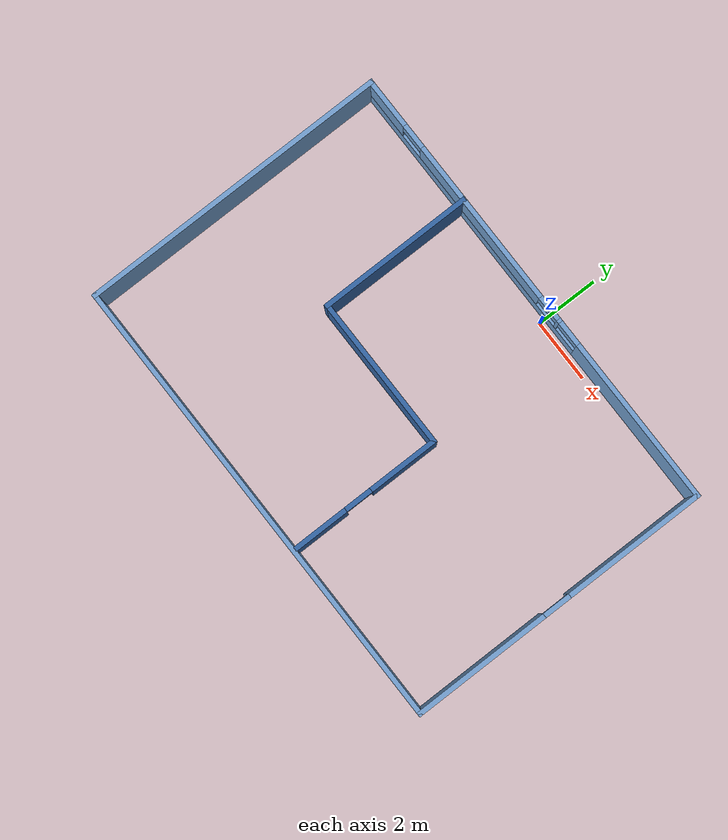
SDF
<?xml version='1.0'?>
<sdf version='1.6'>
  <model name='world'>
    <pose frame=''>-0.795235 -4.68868 0 0 -0 0</pose>
    <link name='Wall_0'>
      <collision name='Wall_0_Collision'>
        <geometry>
          <box>
            <size>10 0.15 2.5</size>
          </box>
        </geometry>
        <pose frame=''>0 0 1.25 0 -0 0</pose>
      </collision>
      <visual name='Wall_0_Visual'>
        <pose frame=''>0 0 1.25 0 -0 0</pose>
        <geometry>
          <box>
            <size>10 0.15 2.5</size>
          </box>
        </geometry>
        <material>
          <script>
            <uri>file://media/materials/scripts/gazebo.material</uri>
            <name>Gazebo/Grey</name>
          </script>
          <ambient>0.447059 0.623529 0.811765 1</ambient>
        </material>
        <meta>
          <layer>0</layer>
        </meta>
      </visual>
      <pose frame=''>-7.425 0 0 0 -0 -1.5708</pose>
    </link>
    <link name='Wall_1'>
      <collision name='Wall_1_Collision'>
        <geometry>
          <box>
            <size>15 0.15 2.5</size>
          </box>
        </geometry>
        <pose frame=''>0 0 1.25 0 -0 0</pose>
      </collision>
      <visual name='Wall_1_Visual'>
        <pose frame=''>0 0 1.25 0 -0 0</pose>
        <geometry>
          <box>
            <size>15 0.15 2.5</size>
          </box>
        </geometry>
        <material>
          <script>
            <uri>file://media/materials/scripts/gazebo.material</uri>
            <name>Gazebo/Grey</name>
          </script>
          <ambient>0.447059 0.623529 0.811765 1</ambient>
        </material>
        <meta>
          <layer>0</layer>
        </meta>
      </visual>
      <pose frame=''>0 -4.925 0 0 -0 0</pose>
    </link>
    <link name='Wall_2'>
      <pose frame=''>7.425 0 0 0 -0 1.5708</pose>
      <visual name='Wall_2_Visual_0'>
        <pose frame=''>-2.76095 0 1.25 0 -0 0</pose>
        <geometry>
          <box>
            <size>4.47811 0.15 2.5</size>
          </box>
        </geometry>
        <material>
          <script>
            <uri>file://media/materials/scripts/gazebo.material</uri>
            <name>Gazebo/Grey</name>
          </script>
          <ambient>0.447059 0.623529 0.811765 1</ambient>
        </material>
        <meta>
          <layer>0</layer>
        </meta>
      </visual>
      <collision name='Wall_2_Collision_0'>
        <geometry>
          <box>
            <size>4.47811 0.15 2.5</size>
          </box>
        </geometry>
        <pose frame=''>-2.76095 0 1.25 0 -0 0</pose>
      </collision>
      <visual name='Wall_2_Visual_1'>
        <pose frame=''>2.68905 0 1.25 0 -0 0</pose>
        <geometry>
          <box>
            <size>4.6219 0.15 2.5</size>
          </box>
        </geometry>
        <material>
          <script>
            <uri>file://media/materials/scripts/gazebo.material</uri>
            <name>Gazebo/Grey</name>
          </script>
          <ambient>0.447059 0.623529 0.811765 1</ambient>
        </material>
        <meta>
          <layer>0</layer>
        </meta>
      </visual>
      <collision name='Wall_2_Collision_1'>
        <geometry>
          <box>
            <size>4.6219 0.15 2.5</size>
          </box>
        </geometry>
        <pose frame=''>2.68905 0 1.25 0 -0 0</pose>
      </collision>
      <visual name='Wall_2_Visual_2'>
        <pose frame=''>-0.071895 0 2.25 0 -0 0</pose>
        <geometry>
          <box>
            <size>0.9 0.15 0.5</size>
          </box>
        </geometry>
        <material>
          <script>
            <uri>file://media/materials/scripts/gazebo.material</uri>
            <name>Gazebo/Grey</name>
          </script>
          <ambient>0.447059 0.623529 0.811765 1</ambient>
        </material>
        <meta>
          <layer>0</layer>
        </meta>
      </visual>
      <collision name='Wall_2_Collision_2'>
        <geometry>
          <box>
            <size>0.9 0.15 0.5</size>
          </box>
        </geometry>
        <pose frame=''>-0.071895 0 2.25 0 -0 0</pose>
      </collision>
    </link>
    <link name='Wall_3'>
      <pose frame=''>0 4.925 0 0 -0 3.14159</pose>
      <visual name='Wall_3_Visual_0'>
        <pose frame=''>-4.77062 0 1.25 0 -0 0</pose>
        <geometry>
          <box>
            <size>5.45876 0.15 2.5</size>
          </box>
        </geometry>
        <material>
          <script>
            <uri>file://media/materials/scripts/gazebo.material</uri>
            <name>Gazebo/Grey</name>
          </script>
          <ambient>0.447059 0.623529 0.811765 1</ambient>
        </material>
        <meta>
          <layer>0</layer>
        </meta>
      </visual>
      <collision name='Wall_3_Collision_0'>
        <geometry>
          <box>
            <size>5.45876 0.15 2.5</size>
          </box>
        </geometry>
        <pose frame=''>-4.77062 0 1.25 0 -0 0</pose>
      </collision>
      <visual name='Wall_3_Visual_1'>
        <pose frame=''>2.72938 0 0.5 0 -0 0</pose>
        <geometry>
          <box>
            <size>9.54124 0.15 1</size>
          </box>
        </geometry>
        <material>
          <script>
            <uri>file://media/materials/scripts/gazebo.material</uri>
            <name>Gazebo/Grey</name>
          </script>
          <ambient>0.447059 0.623529 0.811765 1</ambient>
        </material>
        <meta>
          <layer>0</layer>
        </meta>
      </visual>
      <collision name='Wall_3_Collision_1'>
        <geometry>
          <box>
            <size>9.54124 0.15 1</size>
          </box>
        </geometry>
        <pose frame=''>2.72938 0 0.5 0 -0 0</pose>
      </collision>
      <visual name='Wall_3_Visual_2'>
        <pose frame=''>-1.18904 0 1.75 0 -0 0</pose>
        <geometry>
          <box>
            <size>0.104407 0.15 1.5</size>
          </box>
        </geometry>
        <material>
          <script>
            <uri>file://media/materials/scripts/gazebo.material</uri>
            <name>Gazebo/Grey</name>
          </script>
          <ambient>0.447059 0.623529 0.811765 1</ambient>
        </material>
        <meta>
          <layer>0</layer>
        </meta>
      </visual>
      <collision name='Wall_3_Collision_2'>
        <geometry>
          <box>
            <size>0.104407 0.15 1.5</size>
          </box>
        </geometry>
        <pose frame=''>-1.18904 0 1.75 0 -0 0</pose>
      </collision>
      <visual name='Wall_3_Visual_3'>
        <pose frame=''>2.36197 0 1.75 0 -0 0</pose>
        <geometry>
          <box>
            <size>5.3976 0.15 1.5</size>
          </box>
        </geometry>
        <material>
          <script>
            <uri>file://media/materials/scripts/gazebo.material</uri>
            <name>Gazebo/Grey</name>
          </script>
          <ambient>0.447059 0.623529 0.811765 1</ambient>
        </material>
        <meta>
          <layer>0</layer>
        </meta>
      </visual>
      <collision name='Wall_3_Collision_3'>
        <geometry>
          <box>
            <size>5.3976 0.15 1.5</size>
          </box>
        </geometry>
        <pose frame=''>2.36197 0 1.75 0 -0 0</pose>
      </collision>
      <visual name='Wall_3_Visual_4'>
        <pose frame=''>6.68038 0 1.75 0 -0 0</pose>
        <geometry>
          <box>
            <size>1.63923 0.15 1.5</size>
          </box>
        </geometry>
        <material>
          <script>
            <uri>file://media/materials/scripts/gazebo.material</uri>
            <name>Gazebo/Grey</name>
          </script>
          <ambient>0.447059 0.623529 0.811765 1</ambient>
        </material>
        <meta>
          <layer>0</layer>
        </meta>
      </visual>
      <collision name='Wall_3_Collision_4'>
        <geometry>
          <box>
            <size>1.63923 0.15 1.5</size>
          </box>
        </geometry>
        <pose frame=''>6.68038 0 1.75 0 -0 0</pose>
      </collision>
      <visual name='Wall_3_Visual_5'>
        <pose frame=''>-1.64124 0 2.15 0 -0 0</pose>
        <geometry>
          <box>
            <size>0.8 0.15 0.7</size>
          </box>
        </geometry>
        <material>
          <script>
            <uri>file://media/materials/scripts/gazebo.material</uri>
            <name>Gazebo/Grey</name>
          </script>
          <ambient>0.447059 0.623529 0.811765 1</ambient>
        </material>
        <meta>
          <layer>0</layer>
        </meta>
      </visual>
      <collision name='Wall_3_Collision_5'>
        <geometry>
          <box>
            <size>0.8 0.15 0.7</size>
          </box>
        </geometry>
        <pose frame=''>-1.64124 0 2.15 0 -0 0</pose>
      </collision>
      <visual name='Wall_3_Visual_6'>
        <pose frame=''>-0.736835 0 2.15 0 -0 0</pose>
        <geometry>
          <box>
            <size>0.8 0.15 0.7</size>
          </box>
        </geometry>
        <material>
          <script>
            <uri>file://media/materials/scripts/gazebo.material</uri>
            <name>Gazebo/Grey</name>
          </script>
          <ambient>0.447059 0.623529 0.811765 1</ambient>
        </material>
        <meta>
          <layer>0</layer>
        </meta>
      </visual>
      <collision name='Wall_3_Collision_6'>
        <geometry>
          <box>
            <size>0.8 0.15 0.7</size>
          </box>
        </geometry>
        <pose frame=''>-0.736835 0 2.15 0 -0 0</pose>
      </collision>
      <visual name='Wall_3_Visual_7'>
        <pose frame=''>5.46077 0 2.15 0 -0 0</pose>
        <geometry>
          <box>
            <size>0.8 0.15 0.7</size>
          </box>
        </geometry>
        <material>
          <script>
            <uri>file://media/materials/scripts/gazebo.material</uri>
            <name>Gazebo/Grey</name>
          </script>
          <ambient>0.447059 0.623529 0.811765 1</ambient>
        </material>
        <meta>
          <layer>0</layer>
        </meta>
      </visual>
      <collision name='Wall_3_Collision_7'>
        <geometry>
          <box>
            <size>0.8 0.15 0.7</size>
          </box>
        </geometry>
        <pose frame=''>5.46077 0 2.15 0 -0 0</pose>
      </collision>
    </link>
    <link name='Wall_5'>
      <collision name='Wall_5_Collision'>
        <geometry>
          <box>
            <size>5 0.15 2.5</size>
          </box>
        </geometry>
        <pose frame=''>0 0 1.25 0 -0 0</pose>
      </collision>
      <visual name='Wall_5_Visual'>
        <pose frame=''>0 0 1.25 0 -0 0</pose>
        <geometry>
          <box>
            <size>5 0.15 2.5</size>
          </box>
        </geometry>
        <material>
          <script>
            <uri>file://media/materials/scripts/gazebo.material</uri>
            <name>Gazebo/Grey</name>
          </script>
          <ambient>0.203922 0.396078 0.643137 1</ambient>
        </material>
        <meta>
          <layer>0</layer>
        </meta>
      </visual>
      <pose frame=''>-3.17339 2.47734 0 0 -0 -1.5708</pose>
    </link>
    <link name='Wall_6'>
      <collision name='Wall_6_Collision'>
        <geometry>
          <box>
            <size>5 0.15 2.5</size>
          </box>
        </geometry>
        <pose frame=''>0 0 1.25 0 -0 0</pose>
      </collision>
      <visual name='Wall_6_Visual'>
        <pose frame=''>0 0 1.25 0 -0 0</pose>
        <geometry>
          <box>
            <size>5 0.15 2.5</size>
          </box>
        </geometry>
        <material>
          <script>
            <uri>file://media/materials/scripts/gazebo.material</uri>
            <name>Gazebo/Grey</name>
          </script>
          <ambient>0.203922 0.396078 0.643137 1</ambient>
        </material>
        <meta>
          <layer>0</layer>
        </meta>
      </visual>
      <pose frame=''>-0.748394 0.052343 0 0 -0 0</pose>
    </link>
    <link name='Wall_7'>
      <pose frame=''>1.67661 -2.37266 0 0 -0 -1.5708</pose>
      <visual name='Wall_7_Visual_0'>
        <pose frame=''>-1.34857 0 1.25 0 -0 0</pose>
        <geometry>
          <box>
            <size>2.30286 0.15 2.5</size>
          </box>
        </geometry>
        <material>
          <script>
            <uri>file://media/materials/scripts/gazebo.material</uri>
            <name>Gazebo/Grey</name>
          </script>
          <ambient>0.203922 0.396078 0.643137 1</ambient>
        </material>
        <meta>
          <layer>0</layer>
        </meta>
      </visual>
      <collision name='Wall_7_Collision_0'>
        <geometry>
          <box>
            <size>2.30286 0.15 2.5</size>
          </box>
        </geometry>
        <pose frame=''>-1.34857 0 1.25 0 -0 0</pose>
      </collision>
      <visual name='Wall_7_Visual_1'>
        <pose frame=''>1.60143 0 1.25 0 -0 0</pose>
        <geometry>
          <box>
            <size>1.79714 0.15 2.5</size>
          </box>
        </geometry>
        <material>
          <script>
            <uri>file://media/materials/scripts/gazebo.material</uri>
            <name>Gazebo/Grey</name>
          </script>
          <ambient>0.203922 0.396078 0.643137 1</ambient>
        </material>
        <meta>
          <layer>0</layer>
        </meta>
      </visual>
      <collision name='Wall_7_Collision_1'>
        <geometry>
          <box>
            <size>1.79714 0.15 2.5</size>
          </box>
        </geometry>
        <pose frame=''>1.60143 0 1.25 0 -0 0</pose>
      </collision>
      <visual name='Wall_7_Visual_2'>
        <pose frame=''>0.252856 0 2.25 0 -0 0</pose>
        <geometry>
          <box>
            <size>0.9 0.15 0.5</size>
          </box>
        </geometry>
        <material>
          <script>
            <uri>file://media/materials/scripts/gazebo.material</uri>
            <name>Gazebo/Grey</name>
          </script>
          <ambient>0.203922 0.396078 0.643137 1</ambient>
        </material>
        <meta>
          <layer>0</layer>
        </meta>
      </visual>
      <collision name='Wall_7_Collision_2'>
        <geometry>
          <box>
            <size>0.9 0.15 0.5</size>
          </box>
        </geometry>
        <pose frame=''>0.252856 0 2.25 0 -0 0</pose>
      </collision>
    </link>
    <static>1</static>
  </model>
</sdf>
